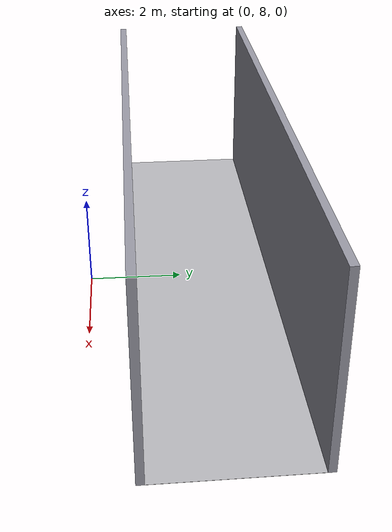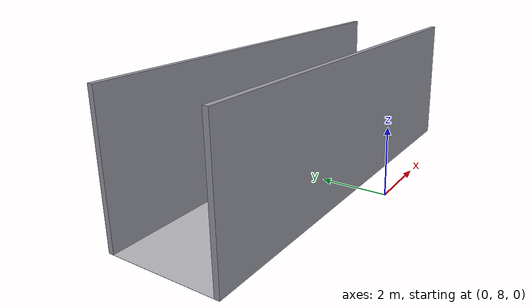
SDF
<?xml version="1.0"?>
<sdf version="1.8">
  <model name="room_corridor">
    <static>true</static>
    <pose>0 0 0 0 0 0</pose>
    <link name="floor_corridor">
      <pose>0.0 10.5 0.002 0 0 0</pose>
      <visual name="vis">
        <geometry><box><size>12.15 3.0 0.004</size></box></geometry>
        <material><ambient>0.72 0.72 0.74 1</ambient><diffuse>0.72 0.72 0.74 1</diffuse></material>
      </visual>
    </link>
    <link name="wall_cor_n">
      <pose>0.0 12.075 2.0 0 0 0</pose>
      <collision name="col"><geometry><box><size>12.15 0.15 4.0</size></box></geometry></collision>
      <visual name="vis">
        <geometry><box><size>12.15 0.15 4.0</size></box></geometry>
        <material><ambient>0.6 0.6 0.65 1</ambient><diffuse>0.6 0.6 0.65 1</diffuse></material>
      </visual>
    </link>
    <link name="wall_cor_s">
      <pose>0.0 8.925 2.0 0 0 0</pose>
      <collision name="col"><geometry><box><size>12.15 0.15 4.0</size></box></geometry></collision>
      <visual name="vis">
        <geometry><box><size>12.15 0.15 4.0</size></box></geometry>
        <material><ambient>0.6 0.6 0.65 1</ambient><diffuse>0.6 0.6 0.65 1</diffuse></material>
      </visual>
    </link>
  </model>
</sdf>
